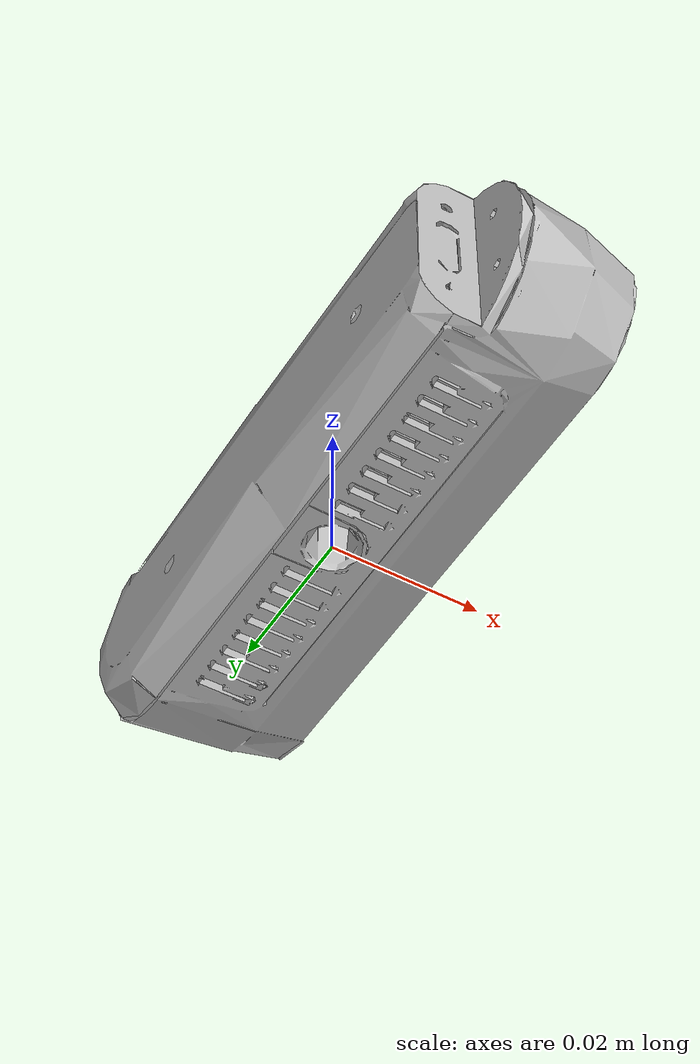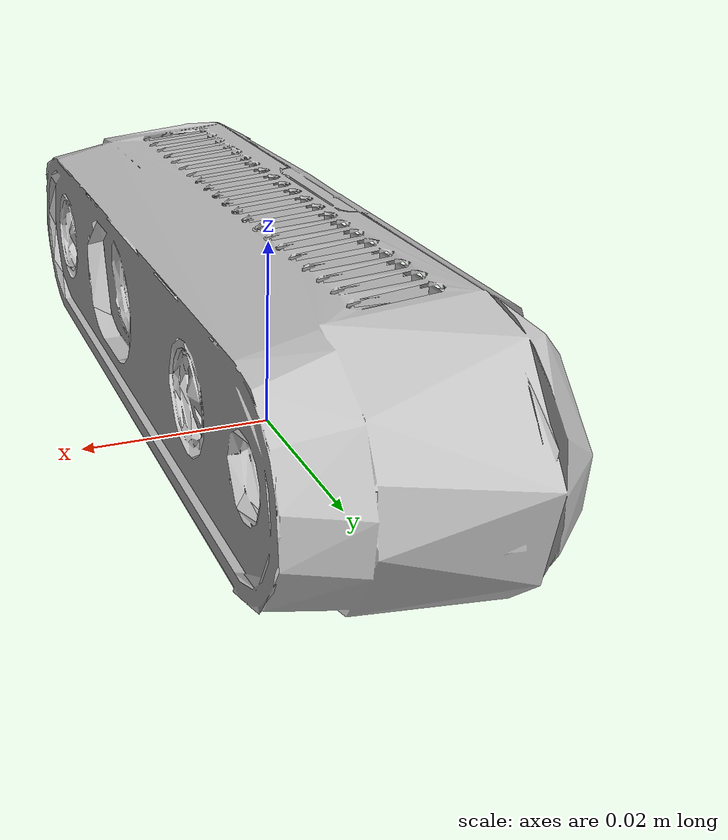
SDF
<?xml version='1.0'?>
<sdf version='1.7'>
  <model name='realsense_d435'>
    <link name='base_link'>
      <inertial>
        <pose>0 0.0175 0.0125 0 -0 0</pose>
        <mass>0.564</mass>
        <inertia>
          <ixx>0.00388124</ixx>
          <ixy>0</ixy>
          <ixz>0</ixz>
          <iyy>0.00049894</iyy>
          <iyz>0</iyz>
          <izz>0.00387926</izz>
        </inertia>
      </inertial>
      <self_collide>0</self_collide>
      <enable_wind>0</enable_wind>
      <kinematic>0</kinematic>
      <gravity>1</gravity>
      <sensor name='cameracolor' type='camera'>
        <camera name='camera'>
          <horizontal_fov>1.21126</horizontal_fov>
          <image>
            <width>640</width>
            <height>480</height>
            <format>RGB_INT8</format>
          </image>
          <clip>
            <near>0.1</near>
            <far>100</far>
          </clip>
          <noise>
            <type>gaussian</type>
            <mean>0</mean>
            <stddev>0.007</stddev>
          </noise>
        </camera>
        <always_on>1</always_on>
        <update_rate>30</update_rate>
        <visualize>1</visualize>
        <pose>0 0.0175 0.0125 0 -0 0</pose>
      </sensor>
      <sensor name='cameraired1' type='camera'>
        <camera name='camera'>
          <horizontal_fov>1.48702</horizontal_fov>
          <image>
            <width>1280</width>
            <height>720</height>
            <format>L_INT8</format>
          </image>
          <clip>
            <near>0.1</near>
            <far>100</far>
          </clip>
          <noise>
            <type>gaussian</type>
            <mean>0</mean>
            <stddev>0.05</stddev>
          </noise>
        </camera>
        <always_on>1</always_on>
        <update_rate>90</update_rate>
        <visualize>0</visualize>
        <pose>0 0.0175 0.0125 0 -0 0</pose>
      </sensor>
      <sensor name='cameraired2' type='camera'>
        <camera name='camera'>
          <horizontal_fov>1.48702</horizontal_fov>
          <image>
            <width>1280</width>
            <height>720</height>
            <format>L_INT8</format>
          </image>
          <clip>
            <near>0.1</near>
            <far>100</far>
          </clip>
          <noise>
            <type>gaussian</type>
            <mean>0</mean>
            <stddev>0.05</stddev>
          </noise>
        </camera>
        <always_on>1</always_on>
        <update_rate>90</update_rate>
        <visualize>0</visualize>
        <pose>0 0.0175 0.0125 0 -0 0</pose>
      </sensor>
      <sensor name='cameradepth' type='depth'>
        <camera name='camera'>
          <horizontal_fov>1.48702</horizontal_fov>
          <image>
            <width>1280</width>
            <height>720</height>
          </image>
          <clip>
            <near>0.1</near>
            <far>100</far>
          </clip>
          <noise>
            <type>gaussian</type>
            <mean>0</mean>
            <stddev>0.1</stddev>
          </noise>
        </camera>
        <always_on>1</always_on>
        <update_rate>90</update_rate>
        <visualize>0</visualize>
        <pose>0 0.0175 0.0125 0 -0 0</pose>
      </sensor>
      <pose>0 0 0 0 -0 0</pose>
      <visual name='base_link_fixed_joint_lump__camera_link_visual'>
        <pose>0.0149 0 0.0125 1.5708 -0 1.5708</pose>
        <geometry>
          <mesh>
            <scale>1 1 1</scale>
            <uri>/home/arvc/catkin_ws/src/issaiass/realsense2_description/meshes/d435.dae</uri>
          </mesh>
        </geometry>
        <material>
          <shader type='pixel'/>
        </material>
        <transparency>0</transparency>
        <cast_shadows>1</cast_shadows>
      </visual>
      <collision name='base_link_fixed_joint_lump__camera_link_collision'>
        <laser_retro>0</laser_retro>
        <max_contacts>10</max_contacts>
        <pose>0 0 0.0125 0 -0 0</pose>
        <geometry>
          <box>
            <size>0.02505 0.09 0.025</size>
          </box>
        </geometry>
        <surface>
          <friction>
            <ode>
              <mu>1</mu>
              <mu2>1</mu2>
              <fdir1>0 0 0</fdir1>
              <slip1>0</slip1>
              <slip2>0</slip2>
            </ode>
            <torsional>
              <coefficient>1</coefficient>
              <patch_radius>0</patch_radius>
              <surface_radius>0</surface_radius>
              <use_patch_radius>1</use_patch_radius>
              <ode>
                <slip>0</slip>
              </ode>
            </torsional>
          </friction>
          <bounce>
            <restitution_coefficient>0</restitution_coefficient>
            <threshold>1e+06</threshold>
          </bounce>
          <contact>
            <collide_without_contact>0</collide_without_contact>
            <collide_without_contact_bitmask>1</collide_without_contact_bitmask>
            <collide_bitmask>1</collide_bitmask>
            <ode>
              <soft_cfm>0</soft_cfm>
              <soft_erp>0.2</soft_erp>
              <kp>1e+13</kp>
              <kd>1</kd>
              <max_vel>0.01</max_vel>
              <min_depth>0</min_depth>
            </ode>
            <bullet>
              <split_impulse>1</split_impulse>
              <split_impulse_penetration_threshold>-0.01</split_impulse_penetration_threshold>
              <soft_cfm>0</soft_cfm>
              <soft_erp>0.2</soft_erp>
              <kp>1e+13</kp>
              <kd>1</kd>
            </bullet>
          </contact>
        </surface>
      </collision>
    </link>
    <static>0</static>
    <allow_auto_disable>1</allow_auto_disable>
    <plugin name='camera' filename='librealsense_gazebo_plugin.so'>
      <prefix>camera</prefix>
      <depthUpdateRate>30.0</depthUpdateRate>
      <colorUpdateRate>30.0</colorUpdateRate>
      <infraredUpdateRate>30.0</infraredUpdateRate>
      <depthTopicName>depth/image_raw</depthTopicName>
      <depthCameraInfoTopicName>depth/camera_info</depthCameraInfoTopicName>
      <colorTopicName>color/image_raw</colorTopicName>
      <colorCameraInfoTopicName>color/camera_info</colorCameraInfoTopicName>
      <infrared1TopicName>infra1/image_raw</infrared1TopicName>
      <infrared1CameraInfoTopicName>infra1/camera_info</infrared1CameraInfoTopicName>
      <infrared2TopicName>infra2/image_raw</infrared2TopicName>
      <infrared2CameraInfoTopicName>infra2/camera_info</infrared2CameraInfoTopicName>
      <colorOpticalframeName>camera_color_optical_frame</colorOpticalframeName>
      <depthOpticalframeName>camera_depth_optical_frame</depthOpticalframeName>
      <infrared1OpticalframeName>camera_left_ir_optical_frame</infrared1OpticalframeName>
      <infrared2OpticalframeName>camera_right_ir_optical_frame</infrared2OpticalframeName>
      <rangeMinDepth>0.2</rangeMinDepth>
      <rangeMaxDepth>10.0</rangeMaxDepth>
      <pointCloud>1</pointCloud>
      <pointCloudTopicName>depth/color/points</pointCloudTopicName>
      <pointCloudCutoff>0.25</pointCloudCutoff>
      <pointCloudCutoffMax>9.0</pointCloudCutoffMax>
      <robotNamespace>/</robotNamespace>
    </plugin>
  </model>
</sdf>
